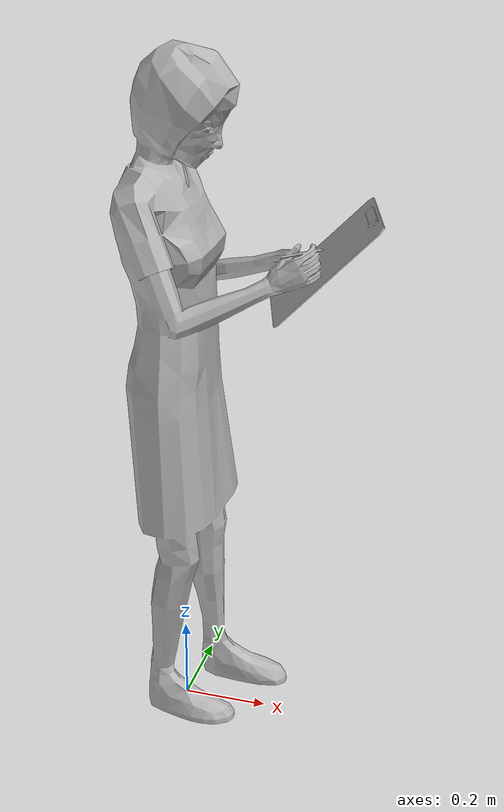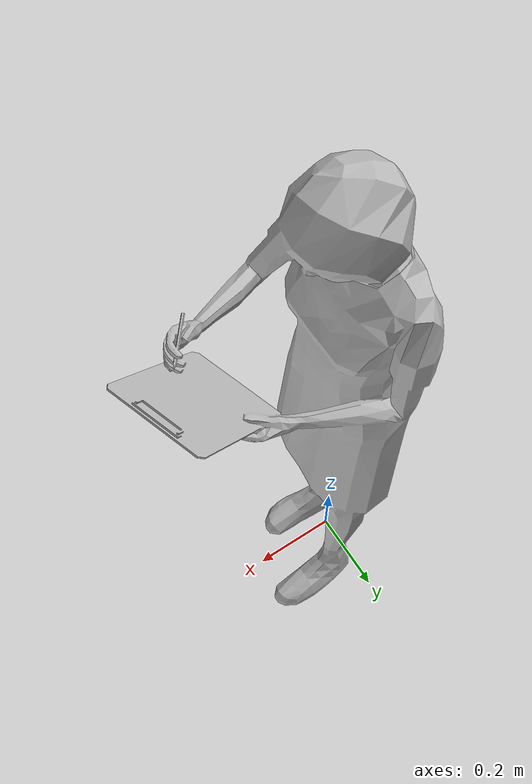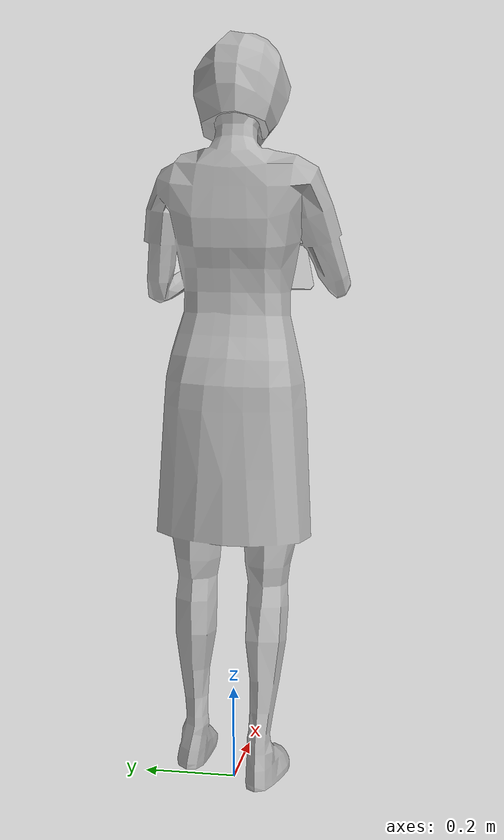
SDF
<?xml version='1.0' encoding='utf-8'?>
<sdf version="1.6">
  <model name="Nurse">
   <static>true</static>
    <link name="body">
      <pose>0 0 0 0 0 0</pose>

      <visual name="visual">
        <geometry>
          <mesh>
            <uri>model://Nurse/meshes/Nurse.obj</uri>
          </mesh>
        </geometry>
      </visual>

      <collision name="collision">
        <geometry>
          <mesh>
            <uri>model://Nurse/meshes/Nurse_Col.obj</uri>
          </mesh>
        </geometry>
      </collision>

    </link>
  </model>
</sdf>
